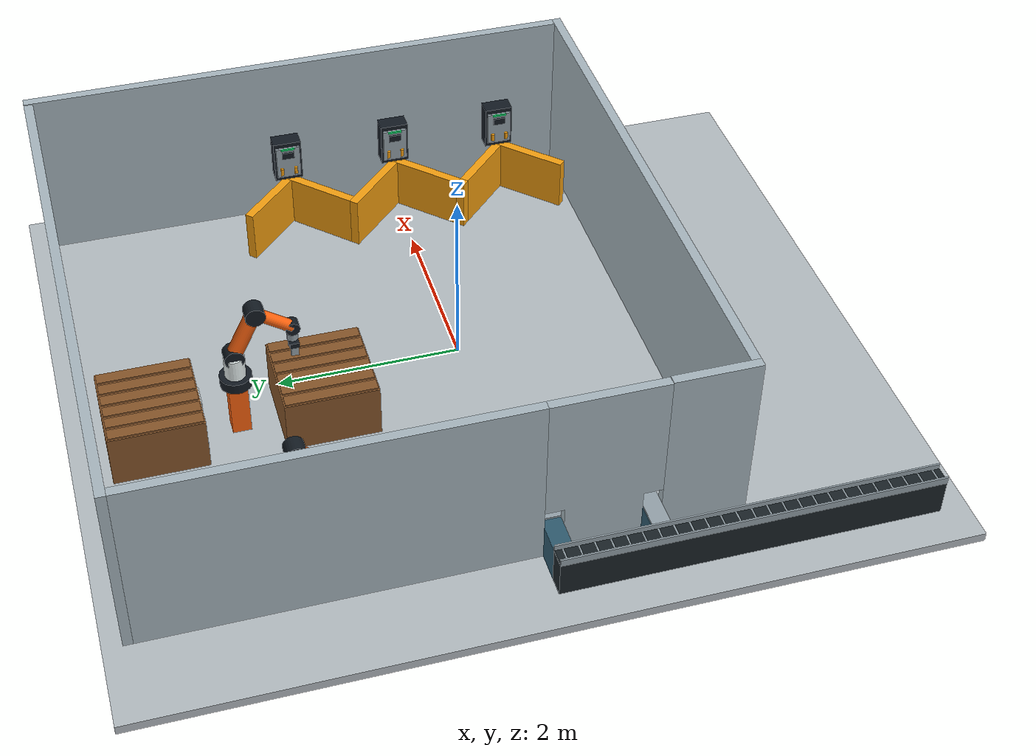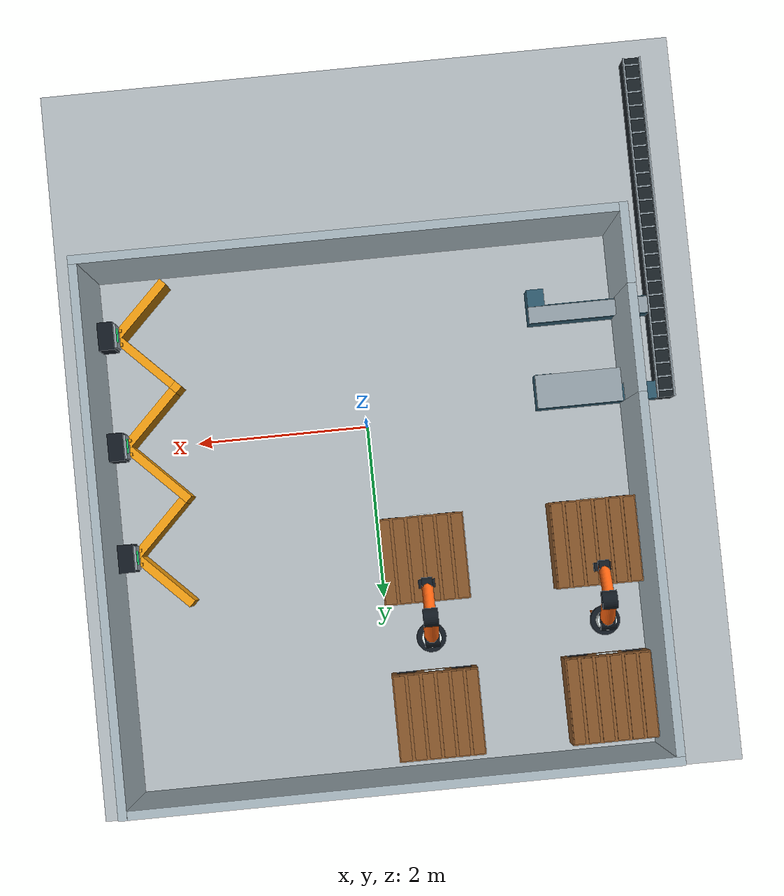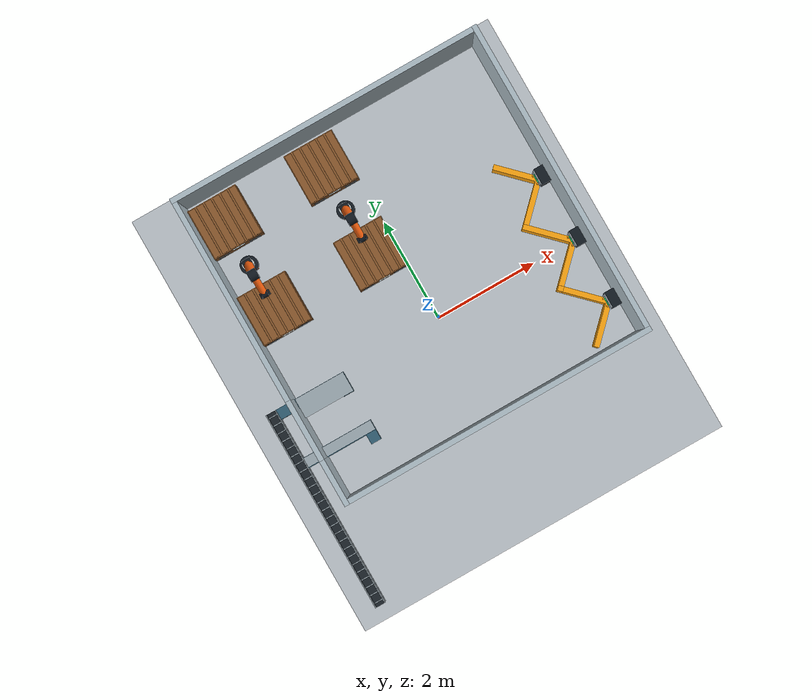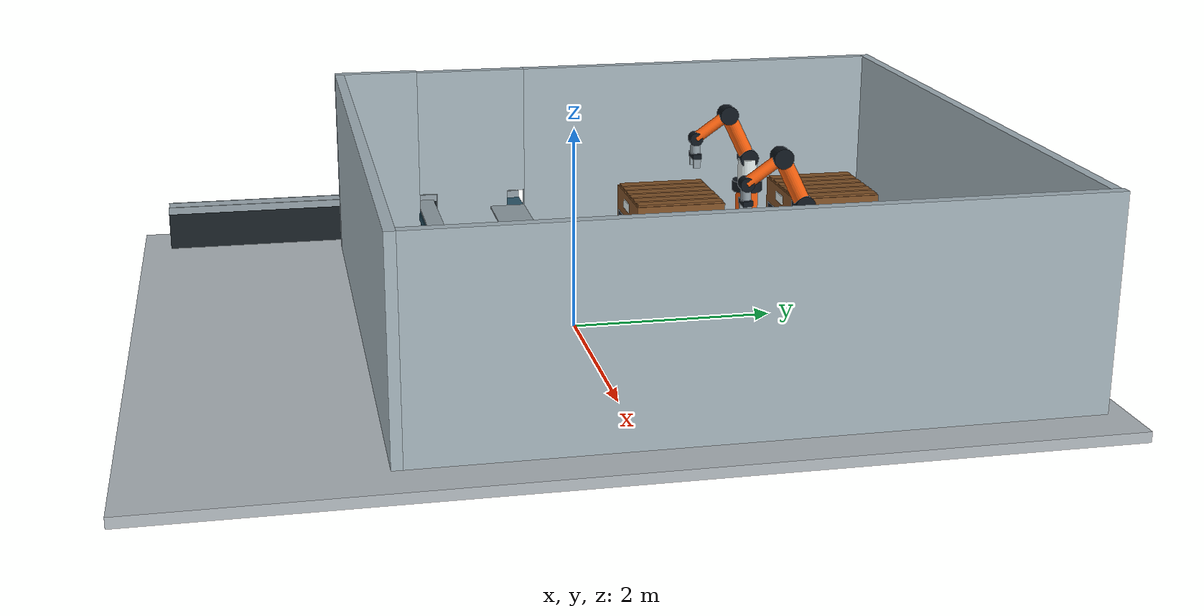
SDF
<?xml version='1.0' encoding='utf-8'?>
<sdf version="1.9">
  <world name="amr_workcell">
    <plugin filename="gz-sim-physics-system" name="gz::sim::systems::Physics" />
    <plugin filename="gz-sim-user-commands-system" name="gz::sim::systems::UserCommands" />
    <plugin filename="gz-sim-scene-broadcaster-system" name="gz::sim::systems::SceneBroadcaster" />
    <plugin filename="gz-sim-sensors-system" name="gz::sim::systems::Sensors">
      <render_engine>ogre2</render_engine>
    </plugin>
    <plugin filename="gz-sim-imu-system" name="gz::sim::systems::Imu" />
    <physics type="ode">
      <real_time_update_rate>1000.0</real_time_update_rate>
      <max_step_size>0.001</max_step_size>
      <real_time_factor>1</real_time_factor>
      <ode>
        <solver>
          <type>quick</type>
          <iters>150</iters>
          <precon_iters>0</precon_iters>
          <sor>1.400000</sor>
          <use_dynamic_moi_rescaling>1</use_dynamic_moi_rescaling>
        </solver>
        <constraints>
          <cfm>0.00001</cfm>
          <erp>0.8</erp>
          <contact_max_correcting_vel>100.0</contact_max_correcting_vel>
          <contact_surface_layer>0.001</contact_surface_layer>
        </constraints>
      </ode>
    </physics>
    <gravity>0 0 -9.8</gravity>
    <scene>
      <ambient>.7 .7 .7 1</ambient>
      <background>.16 .20 .24 1</background>
      <shadows>true</shadows>
    </scene>
    <light name="warehouse_light" type="directional">
      <pose>0 0 8 0 0 0</pose>
      <direction>-.3 .5 -1</direction>
      <diffuse>.9 .9 .9 1</diffuse>
      <cast_shadows>true</cast_shadows>
    </light>
    <model name="original_layout">
      <static>true</static>
      <link name="map">
        <!-- 복합 STL 대신 가벼운 직육면체(Box) 충돌체 배치 -->
        <!-- 외벽 1 (상단 벽) -->
        <collision name="wall_top_collision">
          <pose>0 3.7 0.5 0 0 0</pose>
          <geometry>
            <box>
              <size>7.0 0.2 1.0</size>
            </box>
          </geometry>
        </collision>

        <!-- 외벽 2 (하단 벽) -->
        <collision name="wall_bottom_collision">
          <pose>0 -3.7 0.5 0 0 0</pose>
          <geometry>
            <box>
              <size>7.0 0.2 1.0</size>
            </box>
          </geometry>
        </collision>

        <!-- 외벽 3 (좌측 벽) -->
        <collision name="wall_left_collision">
          <pose>-3.5 0 0.5 0 0 0</pose>
          <geometry>
            <box>
              <size>0.2 7.4 1.0</size>
            </box>
          </geometry>
        </collision>

        <!-- 외벽 4 (우측 벽) -->
        <collision name="wall_right_collision">
          <pose>3.5 0 0.5 0 0 0</pose>
          <geometry>
            <box>
              <size>0.2 7.4 1.0</size>
            </box>
          </geometry>
        </collision>
        <visual name="wall_0">
          <geometry>
            <mesh>
              <uri>../models/my_workbench_map/meshes/part_00.stl</uri>
            </mesh>
          </geometry>
          <material>
            <ambient>.65 .71 .74 1</ambient>
            <diffuse>.65 .71 .74 1</diffuse>
          </material>
        </visual>
        <visual name="wall_1">
          <geometry>
            <mesh>
              <uri>../models/my_workbench_map/meshes/part_01.stl</uri>
            </mesh>
          </geometry>
          <material>
            <ambient>.65 .71 .74 1</ambient>
            <diffuse>.65 .71 .74 1</diffuse>
          </material>
        </visual>
        <visual name="wall_2">
          <geometry>
            <mesh>
              <uri>../models/my_workbench_map/meshes/part_02.stl</uri>
            </mesh>
          </geometry>
          <material>
            <ambient>.65 .71 .74 1</ambient>
            <diffuse>.65 .71 .74 1</diffuse>
          </material>
        </visual>
        <visual name="wall_3">
          <geometry>
            <mesh>
              <uri>../models/my_workbench_map/meshes/part_03.stl</uri>
            </mesh>
          </geometry>
          <material>
            <ambient>.65 .71 .74 1</ambient>
            <diffuse>.65 .71 .74 1</diffuse>
          </material>
        </visual>
        <visual name="wall_4">
          <geometry>
            <mesh>
              <uri>../models/my_workbench_map/meshes/part_04.stl</uri>
            </mesh>
          </geometry>
          <material>
            <ambient>.65 .71 .74 1</ambient>
            <diffuse>.65 .71 .74 1</diffuse>
          </material>
        </visual>
        <visual name="wall_5">
          <geometry>
            <mesh>
              <uri>../models/my_workbench_map/meshes/part_05.stl</uri>
            </mesh>
          </geometry>
          <material>
            <ambient>.65 .71 .74 1</ambient>
            <diffuse>.65 .71 .74 1</diffuse>
          </material>
        </visual>
        <visual name="dock_6">
          <geometry>
            <mesh>
              <uri>../models/my_workbench_map/meshes/part_06.stl</uri>
            </mesh>
          </geometry>
          <material>
            <ambient>.95 .62 .06 1</ambient>
            <diffuse>.95 .62 .06 1</diffuse>
          </material>
        </visual>
        <visual name="dock_7">
          <geometry>
            <mesh>
              <uri>../models/my_workbench_map/meshes/part_07.stl</uri>
            </mesh>
          </geometry>
          <material>
            <ambient>.95 .62 .06 1</ambient>
            <diffuse>.95 .62 .06 1</diffuse>
          </material>
        </visual>
        <visual name="dock_8">
          <geometry>
            <mesh>
              <uri>../models/my_workbench_map/meshes/part_08.stl</uri>
            </mesh>
          </geometry>
          <material>
            <ambient>.95 .62 .06 1</ambient>
            <diffuse>.95 .62 .06 1</diffuse>
          </material>
        </visual>
        <visual name="dock_9">
          <geometry>
            <mesh>
              <uri>../models/my_workbench_map/meshes/part_09.stl</uri>
            </mesh>
          </geometry>
          <material>
            <ambient>.95 .62 .06 1</ambient>
            <diffuse>.95 .62 .06 1</diffuse>
          </material>
        </visual>
        <visual name="dock_10">
          <geometry>
            <mesh>
              <uri>../models/my_workbench_map/meshes/part_10.stl</uri>
            </mesh>
          </geometry>
          <material>
            <ambient>.95 .62 .06 1</ambient>
            <diffuse>.95 .62 .06 1</diffuse>
          </material>
        </visual>
        <visual name="dock_11">
          <geometry>
            <mesh>
              <uri>../models/my_workbench_map/meshes/part_11.stl</uri>
            </mesh>
          </geometry>
          <material>
            <ambient>.95 .62 .06 1</ambient>
            <diffuse>.95 .62 .06 1</diffuse>
          </material>
        </visual>
        <visual name="belt_12">
          <geometry>
            <mesh>
              <uri>../models/my_workbench_map/meshes/part_12.stl</uri>
            </mesh>
          </geometry>
          <material>
            <ambient>.10 .13 .15 1</ambient>
            <diffuse>.10 .13 .15 1</diffuse>
          </material>
        </visual>
        <visual name="bench_13">
          <geometry>
            <mesh>
              <uri>../models/my_workbench_map/meshes/part_13.stl</uri>
            </mesh>
          </geometry>
          <material>
            <ambient>.18 .35 .43 1</ambient>
            <diffuse>.18 .35 .43 1</diffuse>
          </material>
        </visual>
        <visual name="bench_14">
          <geometry>
            <mesh>
              <uri>../models/my_workbench_map/meshes/part_14.stl</uri>
            </mesh>
          </geometry>
          <material>
            <ambient>.18 .35 .43 1</ambient>
            <diffuse>.18 .35 .43 1</diffuse>
          </material>
        </visual>
        <visual name="arm_15">
          <geometry>
            <mesh>
              <uri>../models/my_workbench_map/meshes/part_15.stl</uri>
            </mesh>
          </geometry>
          <material>
            <ambient>.97 .38 .055 1</ambient>
            <diffuse>.97 .38 .055 1</diffuse>
          </material>
        </visual>
        <visual name="arm_16">
          <geometry>
            <mesh>
              <uri>../models/my_workbench_map/meshes/part_16.stl</uri>
            </mesh>
          </geometry>
          <material>
            <ambient>.97 .38 .055 1</ambient>
            <diffuse>.97 .38 .055 1</diffuse>
          </material>
        </visual>
        <visual name="pallet_17">
          <geometry>
            <mesh>
              <uri>../models/my_workbench_map/meshes/part_17.stl</uri>
            </mesh>
          </geometry>
          <material>
            <ambient>.52 .33 .16 1</ambient>
            <diffuse>.52 .33 .16 1</diffuse>
          </material>
        </visual>
        <visual name="pallet_18">
          <geometry>
            <mesh>
              <uri>../models/my_workbench_map/meshes/part_18.stl</uri>
            </mesh>
          </geometry>
          <material>
            <ambient>.52 .33 .16 1</ambient>
            <diffuse>.52 .33 .16 1</diffuse>
          </material>
        </visual>
        <visual name="pallet_19">
          <geometry>
            <mesh>
              <uri>../models/my_workbench_map/meshes/part_19.stl</uri>
            </mesh>
          </geometry>
          <material>
            <ambient>.52 .33 .16 1</ambient>
            <diffuse>.52 .33 .16 1</diffuse>
          </material>
        </visual>
        <visual name="pallet_20">
          <geometry>
            <mesh>
              <uri>../models/my_workbench_map/meshes/part_20.stl</uri>
            </mesh>
          </geometry>
          <material>
            <ambient>.52 .33 .16 1</ambient>
            <diffuse>.52 .33 .16 1</diffuse>
          </material>
        </visual>
        <visual name="bench_21">
          <geometry>
            <mesh>
              <uri>../models/my_workbench_map/meshes/part_21.stl</uri>
            </mesh>
          </geometry>
          <material>
            <ambient>.18 .35 .43 1</ambient>
            <diffuse>.18 .35 .43 1</diffuse>
          </material>
        </visual>
        <visual name="bench_22">
          <geometry>
            <mesh>
              <uri>../models/my_workbench_map/meshes/part_22.stl</uri>
            </mesh>
          </geometry>
          <material>
            <ambient>.18 .35 .43 1</ambient>
            <diffuse>.18 .35 .43 1</diffuse>
          </material>
        </visual>
        <!-- 공장 에폭시 바닥 비주얼 -->
        <!-- foundation_visual과 foundation_collision의 Z 높이를 조정 -->
        <visual name="foundation_visual">
          <pose>-0.25 0 -0.05 0 0 0</pose>
          <geometry>
            <box>
              <size>7.5 8.6 0.1</size>
            </box>
          </geometry>
          <material>
            <ambient>0.60 0.63 0.65 1.0</ambient>
            <diffuse>0.70 0.73 0.75 1.0</diffuse>
            <specular>0.4 0.4 0.4 1.0</specular>
          </material>
        </visual>

        <collision name="foundation_collision">
          <pose>-0.25 0 0 0 0 0</pose>
          <geometry>
            <plane>
              <normal>0 0 1</normal>
              <size>7.5 8.6</size>
            </plane>
          </geometry>
          <surface>
            <friction>
              <ode>
                <mu>100</mu>
                <mu2>50</mu2>
              </ode>
            </friction>
          </surface>
        </collision>
        <visual name="pallet_17_slat_0_visual">
          <pose>-2.92 3.4000000953674316 0.61 0 0 0</pose>
          <geometry>
            <box>
              <size>0.13 0.97 0.02</size>
            </box>
          </geometry>
          <material>
            <ambient>.52 .33 .16 1</ambient>
            <diffuse>.52 .33 .16 1</diffuse>
          </material>
        </visual>
        <visual name="pallet_17_slat_1_visual">
          <pose>-2.752 3.4000000953674316 0.61 0 0 0</pose>
          <geometry>
            <box>
              <size>0.13 0.97 0.02</size>
            </box>
          </geometry>
          <material>
            <ambient>.52 .33 .16 1</ambient>
            <diffuse>.52 .33 .16 1</diffuse>
          </material>
        </visual>
        <visual name="pallet_17_slat_2_visual">
          <pose>-2.584 3.4000000953674316 0.61 0 0 0</pose>
          <geometry>
            <box>
              <size>0.13 0.97 0.02</size>
            </box>
          </geometry>
          <material>
            <ambient>.52 .33 .16 1</ambient>
            <diffuse>.52 .33 .16 1</diffuse>
          </material>
        </visual>
        <visual name="pallet_17_slat_3_visual">
          <pose>-2.416 3.4000000953674316 0.61 0 0 0</pose>
          <geometry>
            <box>
              <size>0.13 0.97 0.02</size>
            </box>
          </geometry>
          <material>
            <ambient>.52 .33 .16 1</ambient>
            <diffuse>.52 .33 .16 1</diffuse>
          </material>
        </visual>
        <visual name="pallet_17_slat_4_visual">
          <pose>-2.2479999999999998 3.4000000953674316 0.61 0 0 0</pose>
          <geometry>
            <box>
              <size>0.13 0.97 0.02</size>
            </box>
          </geometry>
          <material>
            <ambient>.52 .33 .16 1</ambient>
            <diffuse>.52 .33 .16 1</diffuse>
          </material>
        </visual>
        <visual name="pallet_17_slat_5_visual">
          <pose>-2.08 3.4000000953674316 0.61 0 0 0</pose>
          <geometry>
            <box>
              <size>0.13 0.97 0.02</size>
            </box>
          </geometry>
          <material>
            <ambient>.52 .33 .16 1</ambient>
            <diffuse>.52 .33 .16 1</diffuse>
          </material>
        </visual>
        <visual name="pallet_17_fork_-0.32_visual">
          <pose>-2.82 2.8970000953674315 0.22 0 0 0</pose>
          <geometry>
            <box>
              <size>0.23 0.008 0.2</size>
            </box>
          </geometry>
          <material>
            <ambient>.07 .10 .13 1</ambient>
            <diffuse>.07 .10 .13 1</diffuse>
          </material>
        </visual>
        <visual name="pallet_17_fork_0.32_visual">
          <pose>-2.18 2.8970000953674315 0.22 0 0 0</pose>
          <geometry>
            <box>
              <size>0.23 0.008 0.2</size>
            </box>
          </geometry>
          <material>
            <ambient>.07 .10 .13 1</ambient>
            <diffuse>.07 .10 .13 1</diffuse>
          </material>
        </visual>
        <visual name="pallet_17_label_visual">
          <pose>-2.5 2.890000095367432 0.48 0 0 0</pose>
          <geometry>
            <box>
              <size>0.24 0.012 0.1</size>
            </box>
          </geometry>
          <material>
            <ambient>.90 .94 .94 1</ambient>
            <diffuse>.90 .94 .94 1</diffuse>
          </material>
        </visual>
        <visual name="pallet_18_slat_0_visual">
          <pose>-0.9199999999999999 3.4000000953674316 0.61 0 0 0</pose>
          <geometry>
            <box>
              <size>0.13 0.97 0.02</size>
            </box>
          </geometry>
          <material>
            <ambient>.52 .33 .16 1</ambient>
            <diffuse>.52 .33 .16 1</diffuse>
          </material>
        </visual>
        <visual name="pallet_18_slat_1_visual">
          <pose>-0.7519999999999999 3.4000000953674316 0.61 0 0 0</pose>
          <geometry>
            <box>
              <size>0.13 0.97 0.02</size>
            </box>
          </geometry>
          <material>
            <ambient>.52 .33 .16 1</ambient>
            <diffuse>.52 .33 .16 1</diffuse>
          </material>
        </visual>
        <visual name="pallet_18_slat_2_visual">
          <pose>-0.5839999999999999 3.4000000953674316 0.61 0 0 0</pose>
          <geometry>
            <box>
              <size>0.13 0.97 0.02</size>
            </box>
          </geometry>
          <material>
            <ambient>.52 .33 .16 1</ambient>
            <diffuse>.52 .33 .16 1</diffuse>
          </material>
        </visual>
        <visual name="pallet_18_slat_3_visual">
          <pose>-0.4159999999999999 3.4000000953674316 0.61 0 0 0</pose>
          <geometry>
            <box>
              <size>0.13 0.97 0.02</size>
            </box>
          </geometry>
          <material>
            <ambient>.52 .33 .16 1</ambient>
            <diffuse>.52 .33 .16 1</diffuse>
          </material>
        </visual>
        <visual name="pallet_18_slat_4_visual">
          <pose>-0.2479999999999999 3.4000000953674316 0.61 0 0 0</pose>
          <geometry>
            <box>
              <size>0.13 0.97 0.02</size>
            </box>
          </geometry>
          <material>
            <ambient>.52 .33 .16 1</ambient>
            <diffuse>.52 .33 .16 1</diffuse>
          </material>
        </visual>
        <visual name="pallet_18_slat_5_visual">
          <pose>-0.07999999999999985 3.4000000953674316 0.61 0 0 0</pose>
          <geometry>
            <box>
              <size>0.13 0.97 0.02</size>
            </box>
          </geometry>
          <material>
            <ambient>.52 .33 .16 1</ambient>
            <diffuse>.52 .33 .16 1</diffuse>
          </material>
        </visual>
        <visual name="pallet_18_fork_-0.32_visual">
          <pose>-0.8200000000000001 2.8970000953674315 0.22 0 0 0</pose>
          <geometry>
            <box>
              <size>0.23 0.008 0.2</size>
            </box>
          </geometry>
          <material>
            <ambient>.07 .10 .13 1</ambient>
            <diffuse>.07 .10 .13 1</diffuse>
          </material>
        </visual>
        <visual name="pallet_18_fork_0.32_visual">
          <pose>-0.18 2.8970000953674315 0.22 0 0 0</pose>
          <geometry>
            <box>
              <size>0.23 0.008 0.2</size>
            </box>
          </geometry>
          <material>
            <ambient>.07 .10 .13 1</ambient>
            <diffuse>.07 .10 .13 1</diffuse>
          </material>
        </visual>
        <visual name="pallet_18_label_visual">
          <pose>-0.5 2.890000095367432 0.48 0 0 0</pose>
          <geometry>
            <box>
              <size>0.24 0.012 0.1</size>
            </box>
          </geometry>
          <material>
            <ambient>.90 .94 .94 1</ambient>
            <diffuse>.90 .94 .94 1</diffuse>
          </material>
        </visual>
        <visual name="pallet_19_slat_0_visual">
          <pose>-0.9199999999999999 1.5999999642372131 0.61 0 0 0</pose>
          <geometry>
            <box>
              <size>0.13 0.97 0.02</size>
            </box>
          </geometry>
          <material>
            <ambient>.52 .33 .16 1</ambient>
            <diffuse>.52 .33 .16 1</diffuse>
          </material>
        </visual>
        <visual name="pallet_19_slat_1_visual">
          <pose>-0.7519999999999999 1.5999999642372131 0.61 0 0 0</pose>
          <geometry>
            <box>
              <size>0.13 0.97 0.02</size>
            </box>
          </geometry>
          <material>
            <ambient>.52 .33 .16 1</ambient>
            <diffuse>.52 .33 .16 1</diffuse>
          </material>
        </visual>
        <visual name="pallet_19_slat_2_visual">
          <pose>-0.5839999999999999 1.5999999642372131 0.61 0 0 0</pose>
          <geometry>
            <box>
              <size>0.13 0.97 0.02</size>
            </box>
          </geometry>
          <material>
            <ambient>.52 .33 .16 1</ambient>
            <diffuse>.52 .33 .16 1</diffuse>
          </material>
        </visual>
        <visual name="pallet_19_slat_3_visual">
          <pose>-0.4159999999999999 1.5999999642372131 0.61 0 0 0</pose>
          <geometry>
            <box>
              <size>0.13 0.97 0.02</size>
            </box>
          </geometry>
          <material>
            <ambient>.52 .33 .16 1</ambient>
            <diffuse>.52 .33 .16 1</diffuse>
          </material>
        </visual>
        <visual name="pallet_19_slat_4_visual">
          <pose>-0.2479999999999999 1.5999999642372131 0.61 0 0 0</pose>
          <geometry>
            <box>
              <size>0.13 0.97 0.02</size>
            </box>
          </geometry>
          <material>
            <ambient>.52 .33 .16 1</ambient>
            <diffuse>.52 .33 .16 1</diffuse>
          </material>
        </visual>
        <visual name="pallet_19_slat_5_visual">
          <pose>-0.07999999999999985 1.5999999642372131 0.61 0 0 0</pose>
          <geometry>
            <box>
              <size>0.13 0.97 0.02</size>
            </box>
          </geometry>
          <material>
            <ambient>.52 .33 .16 1</ambient>
            <diffuse>.52 .33 .16 1</diffuse>
          </material>
        </visual>
        <visual name="pallet_19_fork_-0.32_visual">
          <pose>-0.8200000000000001 1.096999964237213 0.22 0 0 0</pose>
          <geometry>
            <box>
              <size>0.23 0.008 0.2</size>
            </box>
          </geometry>
          <material>
            <ambient>.07 .10 .13 1</ambient>
            <diffuse>.07 .10 .13 1</diffuse>
          </material>
        </visual>
        <visual name="pallet_19_fork_0.32_visual">
          <pose>-0.18 1.096999964237213 0.22 0 0 0</pose>
          <geometry>
            <box>
              <size>0.23 0.008 0.2</size>
            </box>
          </geometry>
          <material>
            <ambient>.07 .10 .13 1</ambient>
            <diffuse>.07 .10 .13 1</diffuse>
          </material>
        </visual>
        <visual name="pallet_19_label_visual">
          <pose>-0.5 1.0899999642372131 0.48 0 0 0</pose>
          <geometry>
            <box>
              <size>0.24 0.012 0.1</size>
            </box>
          </geometry>
          <material>
            <ambient>.90 .94 .94 1</ambient>
            <diffuse>.90 .94 .94 1</diffuse>
          </material>
        </visual>
        <visual name="pallet_20_slat_0_visual">
          <pose>-2.92 1.5999999642372131 0.61 0 0 0</pose>
          <geometry>
            <box>
              <size>0.13 0.97 0.02</size>
            </box>
          </geometry>
          <material>
            <ambient>.52 .33 .16 1</ambient>
            <diffuse>.52 .33 .16 1</diffuse>
          </material>
        </visual>
        <visual name="pallet_20_slat_1_visual">
          <pose>-2.752 1.5999999642372131 0.61 0 0 0</pose>
          <geometry>
            <box>
              <size>0.13 0.97 0.02</size>
            </box>
          </geometry>
          <material>
            <ambient>.52 .33 .16 1</ambient>
            <diffuse>.52 .33 .16 1</diffuse>
          </material>
        </visual>
        <visual name="pallet_20_slat_2_visual">
          <pose>-2.584 1.5999999642372131 0.61 0 0 0</pose>
          <geometry>
            <box>
              <size>0.13 0.97 0.02</size>
            </box>
          </geometry>
          <material>
            <ambient>.52 .33 .16 1</ambient>
            <diffuse>.52 .33 .16 1</diffuse>
          </material>
        </visual>
        <visual name="pallet_20_slat_3_visual">
          <pose>-2.416 1.5999999642372131 0.61 0 0 0</pose>
          <geometry>
            <box>
              <size>0.13 0.97 0.02</size>
            </box>
          </geometry>
          <material>
            <ambient>.52 .33 .16 1</ambient>
            <diffuse>.52 .33 .16 1</diffuse>
          </material>
        </visual>
        <visual name="pallet_20_slat_4_visual">
          <pose>-2.2479999999999998 1.5999999642372131 0.61 0 0 0</pose>
          <geometry>
            <box>
              <size>0.13 0.97 0.02</size>
            </box>
          </geometry>
          <material>
            <ambient>.52 .33 .16 1</ambient>
            <diffuse>.52 .33 .16 1</diffuse>
          </material>
        </visual>
        <visual name="pallet_20_slat_5_visual">
          <pose>-2.08 1.5999999642372131 0.61 0 0 0</pose>
          <geometry>
            <box>
              <size>0.13 0.97 0.02</size>
            </box>
          </geometry>
          <material>
            <ambient>.52 .33 .16 1</ambient>
            <diffuse>.52 .33 .16 1</diffuse>
          </material>
        </visual>
        <visual name="pallet_20_fork_-0.32_visual">
          <pose>-2.82 1.096999964237213 0.22 0 0 0</pose>
          <geometry>
            <box>
              <size>0.23 0.008 0.2</size>
            </box>
          </geometry>
          <material>
            <ambient>.07 .10 .13 1</ambient>
            <diffuse>.07 .10 .13 1</diffuse>
          </material>
        </visual>
        <visual name="pallet_20_fork_0.32_visual">
          <pose>-2.18 1.096999964237213 0.22 0 0 0</pose>
          <geometry>
            <box>
              <size>0.23 0.008 0.2</size>
            </box>
          </geometry>
          <material>
            <ambient>.07 .10 .13 1</ambient>
            <diffuse>.07 .10 .13 1</diffuse>
          </material>
        </visual>
        <visual name="pallet_20_label_visual">
          <pose>-2.5 1.0899999642372131 0.48 0 0 0</pose>
          <geometry>
            <box>
              <size>0.24 0.012 0.1</size>
            </box>
          </geometry>
          <material>
            <ambient>.90 .94 .94 1</ambient>
            <diffuse>.90 .94 .94 1</diffuse>
          </material>
        </visual>
        <visual name="arm_0_turntable_visual">
          <pose>-2.5 2.5 0.66 0 0 0</pose>
          <geometry>
            <cylinder>
              <radius>0.17</radius>
              <length>0.12</length>
            </cylinder>
          </geometry>
          <material>
            <ambient>.07 .10 .13 1</ambient>
            <diffuse>.07 .10 .13 1</diffuse>
          </material>
        </visual>
        <collision name="arm_0_turntable_collision">
          <pose>-2.5 2.5 0.66 0 0 0</pose>
          <geometry>
            <cylinder>
              <radius>0.17</radius>
              <length>0.12</length>
            </cylinder>
          </geometry>
        </collision>
        <visual name="arm_0_pedestal_visual">
          <pose>-2.5 2.5 0.84 0 0 0</pose>
          <geometry>
            <cylinder>
              <radius>0.11</radius>
              <length>0.26</length>
            </cylinder>
          </geometry>
          <material>
            <ambient>.90 .94 .94 1</ambient>
            <diffuse>.90 .94 .94 1</diffuse>
          </material>
        </visual>
        <collision name="arm_0_pedestal_collision">
          <pose>-2.5 2.5 0.84 0 0 0</pose>
          <geometry>
            <cylinder>
              <radius>0.11</radius>
              <length>0.26</length>
            </cylinder>
          </geometry>
        </collision>
        <visual name="arm_0_upper_visual">
          <pose>-2.5 2.375 1.2349999999999999 0 0.45577375597670555 -1.5707963267948966</pose>
          <geometry>
            <cylinder>
              <radius>0.085</radius>
              <length>0.567978872846517</length>
            </cylinder>
          </geometry>
          <material>
            <ambient>.97 .38 .055 1</ambient>
            <diffuse>.97 .38 .055 1</diffuse>
          </material>
        </visual>
        <collision name="arm_0_upper_collision">
          <pose>-2.5 2.375 1.2349999999999999 0 0.45577375597670555 -1.5707963267948966</pose>
          <geometry>
            <cylinder>
              <radius>0.085</radius>
              <length>0.567978872846517</length>
            </cylinder>
          </geometry>
        </collision>
        <visual name="arm_0_forearm_visual">
          <pose>-2.5 2.065 1.3599999999999999 0 2.1833338834052 -1.5707963267948966</pose>
          <geometry>
            <cylinder>
              <radius>0.065</radius>
              <length>0.4522167621838006</length>
            </cylinder>
          </geometry>
          <material>
            <ambient>.97 .38 .055 1</ambient>
            <diffuse>.97 .38 .055 1</diffuse>
          </material>
        </visual>
        <collision name="arm_0_forearm_collision">
          <pose>-2.5 2.065 1.3599999999999999 0 2.1833338834052 -1.5707963267948966</pose>
          <geometry>
            <cylinder>
              <radius>0.065</radius>
              <length>0.4522167621838006</length>
            </cylinder>
          </geometry>
        </collision>
        <visual name="arm_0_joint_0_visual">
          <pose>-2.5 2.5 0.98 0 1.5707963267948966 0</pose>
          <geometry>
            <cylinder>
              <radius>0.105</radius>
              <length>0.17</length>
            </cylinder>
          </geometry>
          <material>
            <ambient>.07 .10 .13 1</ambient>
            <diffuse>.07 .10 .13 1</diffuse>
          </material>
        </visual>
        <collision name="arm_0_joint_0_collision">
          <pose>-2.5 2.5 0.98 0 1.5707963267948966 0</pose>
          <geometry>
            <cylinder>
              <radius>0.105</radius>
              <length>0.17</length>
            </cylinder>
          </geometry>
        </collision>
        <visual name="arm_0_joint_1_visual">
          <pose>-2.5 2.25 1.49 0 1.5707963267948966 0</pose>
          <geometry>
            <cylinder>
              <radius>0.105</radius>
              <length>0.17</length>
            </cylinder>
          </geometry>
          <material>
            <ambient>.07 .10 .13 1</ambient>
            <diffuse>.07 .10 .13 1</diffuse>
          </material>
        </visual>
        <collision name="arm_0_joint_1_collision">
          <pose>-2.5 2.25 1.49 0 1.5707963267948966 0</pose>
          <geometry>
            <cylinder>
              <radius>0.105</radius>
              <length>0.17</length>
            </cylinder>
          </geometry>
        </collision>
        <visual name="arm_0_joint_2_visual">
          <pose>-2.5 1.88 1.23 0 1.5707963267948966 0</pose>
          <geometry>
            <cylinder>
              <radius>0.075</radius>
              <length>0.12</length>
            </cylinder>
          </geometry>
          <material>
            <ambient>.07 .10 .13 1</ambient>
            <diffuse>.07 .10 .13 1</diffuse>
          </material>
        </visual>
        <collision name="arm_0_joint_2_collision">
          <pose>-2.5 1.88 1.23 0 1.5707963267948966 0</pose>
          <geometry>
            <cylinder>
              <radius>0.075</radius>
              <length>0.12</length>
            </cylinder>
          </geometry>
        </collision>
        <visual name="arm_0_wrist_visual">
          <pose>-2.5 1.88 1.13 0 0 0</pose>
          <geometry>
            <cylinder>
              <radius>0.055</radius>
              <length>0.14</length>
            </cylinder>
          </geometry>
          <material>
            <ambient>.58 .63 .66 1</ambient>
            <diffuse>.58 .63 .66 1</diffuse>
          </material>
        </visual>
        <collision name="arm_0_wrist_collision">
          <pose>-2.5 1.88 1.13 0 0 0</pose>
          <geometry>
            <cylinder>
              <radius>0.055</radius>
              <length>0.14</length>
            </cylinder>
          </geometry>
        </collision>
        <visual name="arm_0_gripper_visual">
          <pose>-2.5 1.88 1.04 0 0 0</pose>
          <geometry>
            <box>
              <size>0.19 0.1 0.06</size>
            </box>
          </geometry>
          <material>
            <ambient>.07 .10 .13 1</ambient>
            <diffuse>.07 .10 .13 1</diffuse>
          </material>
        </visual>
        <collision name="arm_0_gripper_collision">
          <pose>-2.5 1.88 1.04 0 0 0</pose>
          <geometry>
            <box>
              <size>0.19 0.1 0.06</size>
            </box>
          </geometry>
        </collision>
        <visual name="arm_0_finger_-0.078_visual">
          <pose>-2.578 1.88 0.97 0 0 0</pose>
          <geometry>
            <box>
              <size>0.025 0.08 0.12</size>
            </box>
          </geometry>
          <material>
            <ambient>.58 .63 .66 1</ambient>
            <diffuse>.58 .63 .66 1</diffuse>
          </material>
        </visual>
        <collision name="arm_0_finger_-0.078_collision">
          <pose>-2.578 1.88 0.97 0 0 0</pose>
          <geometry>
            <box>
              <size>0.025 0.08 0.12</size>
            </box>
          </geometry>
        </collision>
        <visual name="arm_0_finger_0.078_visual">
          <pose>-2.422 1.88 0.97 0 0 0</pose>
          <geometry>
            <box>
              <size>0.025 0.08 0.12</size>
            </box>
          </geometry>
          <material>
            <ambient>.58 .63 .66 1</ambient>
            <diffuse>.58 .63 .66 1</diffuse>
          </material>
        </visual>
        <collision name="arm_0_finger_0.078_collision">
          <pose>-2.422 1.88 0.97 0 0 0</pose>
          <geometry>
            <box>
              <size>0.025 0.08 0.12</size>
            </box>
          </geometry>
        </collision>
        <visual name="arm_1_turntable_visual">
          <pose>-0.5 2.5 0.66 0 0 0</pose>
          <geometry>
            <cylinder>
              <radius>0.17</radius>
              <length>0.12</length>
            </cylinder>
          </geometry>
          <material>
            <ambient>.07 .10 .13 1</ambient>
            <diffuse>.07 .10 .13 1</diffuse>
          </material>
        </visual>
        <collision name="arm_1_turntable_collision">
          <pose>-0.5 2.5 0.66 0 0 0</pose>
          <geometry>
            <cylinder>
              <radius>0.17</radius>
              <length>0.12</length>
            </cylinder>
          </geometry>
        </collision>
        <visual name="arm_1_pedestal_visual">
          <pose>-0.5 2.5 0.84 0 0 0</pose>
          <geometry>
            <cylinder>
              <radius>0.11</radius>
              <length>0.26</length>
            </cylinder>
          </geometry>
          <material>
            <ambient>.90 .94 .94 1</ambient>
            <diffuse>.90 .94 .94 1</diffuse>
          </material>
        </visual>
        <collision name="arm_1_pedestal_collision">
          <pose>-0.5 2.5 0.84 0 0 0</pose>
          <geometry>
            <cylinder>
              <radius>0.11</radius>
              <length>0.26</length>
            </cylinder>
          </geometry>
        </collision>
        <visual name="arm_1_upper_visual">
          <pose>-0.5 2.375 1.2349999999999999 0 0.45577375597670555 -1.5707963267948966</pose>
          <geometry>
            <cylinder>
              <radius>0.085</radius>
              <length>0.567978872846517</length>
            </cylinder>
          </geometry>
          <material>
            <ambient>.97 .38 .055 1</ambient>
            <diffuse>.97 .38 .055 1</diffuse>
          </material>
        </visual>
        <collision name="arm_1_upper_collision">
          <pose>-0.5 2.375 1.2349999999999999 0 0.45577375597670555 -1.5707963267948966</pose>
          <geometry>
            <cylinder>
              <radius>0.085</radius>
              <length>0.567978872846517</length>
            </cylinder>
          </geometry>
        </collision>
        <visual name="arm_1_forearm_visual">
          <pose>-0.5 2.065 1.3599999999999999 0 2.1833338834052 -1.5707963267948966</pose>
          <geometry>
            <cylinder>
              <radius>0.065</radius>
              <length>0.4522167621838006</length>
            </cylinder>
          </geometry>
          <material>
            <ambient>.97 .38 .055 1</ambient>
            <diffuse>.97 .38 .055 1</diffuse>
          </material>
        </visual>
        <collision name="arm_1_forearm_collision">
          <pose>-0.5 2.065 1.3599999999999999 0 2.1833338834052 -1.5707963267948966</pose>
          <geometry>
            <cylinder>
              <radius>0.065</radius>
              <length>0.4522167621838006</length>
            </cylinder>
          </geometry>
        </collision>
        <visual name="arm_1_joint_0_visual">
          <pose>-0.5 2.5 0.98 0 1.5707963267948966 0</pose>
          <geometry>
            <cylinder>
              <radius>0.105</radius>
              <length>0.17</length>
            </cylinder>
          </geometry>
          <material>
            <ambient>.07 .10 .13 1</ambient>
            <diffuse>.07 .10 .13 1</diffuse>
          </material>
        </visual>
        <collision name="arm_1_joint_0_collision">
          <pose>-0.5 2.5 0.98 0 1.5707963267948966 0</pose>
          <geometry>
            <cylinder>
              <radius>0.105</radius>
              <length>0.17</length>
            </cylinder>
          </geometry>
        </collision>
        <visual name="arm_1_joint_1_visual">
          <pose>-0.5 2.25 1.49 0 1.5707963267948966 0</pose>
          <geometry>
            <cylinder>
              <radius>0.105</radius>
              <length>0.17</length>
            </cylinder>
          </geometry>
          <material>
            <ambient>.07 .10 .13 1</ambient>
            <diffuse>.07 .10 .13 1</diffuse>
          </material>
        </visual>
        <collision name="arm_1_joint_1_collision">
          <pose>-0.5 2.25 1.49 0 1.5707963267948966 0</pose>
          <geometry>
            <cylinder>
              <radius>0.105</radius>
              <length>0.17</length>
            </cylinder>
          </geometry>
        </collision>
        <visual name="arm_1_joint_2_visual">
          <pose>-0.5 1.88 1.23 0 1.5707963267948966 0</pose>
          <geometry>
            <cylinder>
              <radius>0.075</radius>
              <length>0.12</length>
            </cylinder>
          </geometry>
          <material>
            <ambient>.07 .10 .13 1</ambient>
            <diffuse>.07 .10 .13 1</diffuse>
          </material>
        </visual>
        <collision name="arm_1_joint_2_collision">
          <pose>-0.5 1.88 1.23 0 1.5707963267948966 0</pose>
          <geometry>
            <cylinder>
              <radius>0.075</radius>
              <length>0.12</length>
            </cylinder>
          </geometry>
        </collision>
        <visual name="arm_1_wrist_visual">
          <pose>-0.5 1.88 1.13 0 0 0</pose>
          <geometry>
            <cylinder>
              <radius>0.055</radius>
              <length>0.14</length>
            </cylinder>
          </geometry>
          <material>
            <ambient>.58 .63 .66 1</ambient>
            <diffuse>.58 .63 .66 1</diffuse>
          </material>
        </visual>
        <collision name="arm_1_wrist_collision">
          <pose>-0.5 1.88 1.13 0 0 0</pose>
          <geometry>
            <cylinder>
              <radius>0.055</radius>
              <length>0.14</length>
            </cylinder>
          </geometry>
        </collision>
        <visual name="arm_1_gripper_visual">
          <pose>-0.5 1.88 1.04 0 0 0</pose>
          <geometry>
            <box>
              <size>0.19 0.1 0.06</size>
            </box>
          </geometry>
          <material>
            <ambient>.07 .10 .13 1</ambient>
            <diffuse>.07 .10 .13 1</diffuse>
          </material>
        </visual>
        <collision name="arm_1_gripper_collision">
          <pose>-0.5 1.88 1.04 0 0 0</pose>
          <geometry>
            <box>
              <size>0.19 0.1 0.06</size>
            </box>
          </geometry>
        </collision>
        <visual name="arm_1_finger_-0.078_visual">
          <pose>-0.578 1.88 0.97 0 0 0</pose>
          <geometry>
            <box>
              <size>0.025 0.08 0.12</size>
            </box>
          </geometry>
          <material>
            <ambient>.58 .63 .66 1</ambient>
            <diffuse>.58 .63 .66 1</diffuse>
          </material>
        </visual>
        <collision name="arm_1_finger_-0.078_collision">
          <pose>-0.578 1.88 0.97 0 0 0</pose>
          <geometry>
            <box>
              <size>0.025 0.08 0.12</size>
            </box>
          </geometry>
        </collision>
        <visual name="arm_1_finger_0.078_visual">
          <pose>-0.422 1.88 0.97 0 0 0</pose>
          <geometry>
            <box>
              <size>0.025 0.08 0.12</size>
            </box>
          </geometry>
          <material>
            <ambient>.58 .63 .66 1</ambient>
            <diffuse>.58 .63 .66 1</diffuse>
          </material>
        </visual>
        <collision name="arm_1_finger_0.078_collision">
          <pose>-0.422 1.88 0.97 0 0 0</pose>
          <geometry>
            <box>
              <size>0.025 0.08 0.12</size>
            </box>
          </geometry>
        </collision>
        <visual name="worktop_-0.2_visual">
          <pose>-2.5 -0.2 0.411 0 0 0</pose>
          <geometry>
            <box>
              <size>1 0.39 0.022</size>
            </box>
          </geometry>
          <material>
            <ambient>.58 .63 .66 1</ambient>
            <diffuse>.58 .63 .66 1</diffuse>
          </material>
        </visual>
        <visual name="bench_trim_-0.2_visual">
          <pose>-2.5 -0.305 0.34 0 0 0</pose>
          <geometry>
            <box>
              <size>1 0.012 0.07</size>
            </box>
          </geometry>
          <material>
            <ambient>.18 .35 .43 1</ambient>
            <diffuse>.18 .35 .43 1</diffuse>
          </material>
        </visual>
        <visual name="worktop_-1.1_visual">
          <pose>-2.7 -1.1 0.411 0 0 0</pose>
          <geometry>
            <box>
              <size>1.4 0.19 0.022</size>
            </box>
          </geometry>
          <material>
            <ambient>.58 .63 .66 1</ambient>
            <diffuse>.58 .63 .66 1</diffuse>
          </material>
        </visual>
        <visual name="bench_trim_-1.1_visual">
          <pose>-2.7 -1.205 0.34 0 0 0</pose>
          <geometry>
            <box>
              <size>1.4 0.012 0.07</size>
            </box>
          </geometry>
          <material>
            <ambient>.18 .35 .43 1</ambient>
            <diffuse>.18 .35 .43 1</diffuse>
          </material>
        </visual>
        <visual name="conveyor_belt_visual">
          <pose>-3.5 -2 0.414 0 0 0</pose>
          <geometry>
            <box>
              <size>0.16 4 0.025</size>
            </box>
          </geometry>
          <material>
            <ambient>.10 .13 .15 1</ambient>
            <diffuse>.10 .13 .15 1</diffuse>
          </material>
        </visual>
        <visual name="conveyor_seam_0_visual">
          <pose>-3.5 -3.92 0.428 0 0 0</pose>
          <geometry>
            <box>
              <size>0.16 0.018 0.004</size>
            </box>
          </geometry>
          <material>
            <ambient>.58 .63 .66 1</ambient>
            <diffuse>.58 .63 .66 1</diffuse>
          </material>
        </visual>
        <visual name="conveyor_seam_1_visual">
          <pose>-3.5 -3.76 0.428 0 0 0</pose>
          <geometry>
            <box>
              <size>0.16 0.018 0.004</size>
            </box>
          </geometry>
          <material>
            <ambient>.58 .63 .66 1</ambient>
            <diffuse>.58 .63 .66 1</diffuse>
          </material>
        </visual>
        <visual name="conveyor_seam_2_visual">
          <pose>-3.5 -3.6 0.428 0 0 0</pose>
          <geometry>
            <box>
              <size>0.16 0.018 0.004</size>
            </box>
          </geometry>
          <material>
            <ambient>.58 .63 .66 1</ambient>
            <diffuse>.58 .63 .66 1</diffuse>
          </material>
        </visual>
        <visual name="conveyor_seam_3_visual">
          <pose>-3.5 -3.44 0.428 0 0 0</pose>
          <geometry>
            <box>
              <size>0.16 0.018 0.004</size>
            </box>
          </geometry>
          <material>
            <ambient>.58 .63 .66 1</ambient>
            <diffuse>.58 .63 .66 1</diffuse>
          </material>
        </visual>
        <visual name="conveyor_seam_4_visual">
          <pose>-3.5 -3.28 0.428 0 0 0</pose>
          <geometry>
            <box>
              <size>0.16 0.018 0.004</size>
            </box>
          </geometry>
          <material>
            <ambient>.58 .63 .66 1</ambient>
            <diffuse>.58 .63 .66 1</diffuse>
          </material>
        </visual>
        <visual name="conveyor_seam_5_visual">
          <pose>-3.5 -3.12 0.428 0 0 0</pose>
          <geometry>
            <box>
              <size>0.16 0.018 0.004</size>
            </box>
          </geometry>
          <material>
            <ambient>.58 .63 .66 1</ambient>
            <diffuse>.58 .63 .66 1</diffuse>
          </material>
        </visual>
        <visual name="conveyor_seam_6_visual">
          <pose>-3.5 -2.96 0.428 0 0 0</pose>
          <geometry>
            <box>
              <size>0.16 0.018 0.004</size>
            </box>
          </geometry>
          <material>
            <ambient>.58 .63 .66 1</ambient>
            <diffuse>.58 .63 .66 1</diffuse>
          </material>
        </visual>
        <visual name="conveyor_seam_7_visual">
          <pose>-3.5 -2.8 0.428 0 0 0</pose>
          <geometry>
            <box>
              <size>0.16 0.018 0.004</size>
            </box>
          </geometry>
          <material>
            <ambient>.58 .63 .66 1</ambient>
            <diffuse>.58 .63 .66 1</diffuse>
          </material>
        </visual>
        <visual name="conveyor_seam_8_visual">
          <pose>-3.5 -2.6399999999999997 0.428 0 0 0</pose>
          <geometry>
            <box>
              <size>0.16 0.018 0.004</size>
            </box>
          </geometry>
          <material>
            <ambient>.58 .63 .66 1</ambient>
            <diffuse>.58 .63 .66 1</diffuse>
          </material>
        </visual>
        <visual name="conveyor_seam_9_visual">
          <pose>-3.5 -2.48 0.428 0 0 0</pose>
          <geometry>
            <box>
              <size>0.16 0.018 0.004</size>
            </box>
          </geometry>
          <material>
            <ambient>.58 .63 .66 1</ambient>
            <diffuse>.58 .63 .66 1</diffuse>
          </material>
        </visual>
        <visual name="conveyor_seam_10_visual">
          <pose>-3.5 -2.32 0.428 0 0 0</pose>
          <geometry>
            <box>
              <size>0.16 0.018 0.004</size>
            </box>
          </geometry>
          <material>
            <ambient>.58 .63 .66 1</ambient>
            <diffuse>.58 .63 .66 1</diffuse>
          </material>
        </visual>
        <visual name="conveyor_seam_11_visual">
          <pose>-3.5 -2.16 0.428 0 0 0</pose>
          <geometry>
            <box>
              <size>0.16 0.018 0.004</size>
            </box>
          </geometry>
          <material>
            <ambient>.58 .63 .66 1</ambient>
            <diffuse>.58 .63 .66 1</diffuse>
          </material>
        </visual>
        <visual name="conveyor_seam_12_visual">
          <pose>-3.5 -2.0 0.428 0 0 0</pose>
          <geometry>
            <box>
              <size>0.16 0.018 0.004</size>
            </box>
          </geometry>
          <material>
            <ambient>.58 .63 .66 1</ambient>
            <diffuse>.58 .63 .66 1</diffuse>
          </material>
        </visual>
        <visual name="conveyor_seam_13_visual">
          <pose>-3.5 -1.8399999999999999 0.428 0 0 0</pose>
          <geometry>
            <box>
              <size>0.16 0.018 0.004</size>
            </box>
          </geometry>
          <material>
            <ambient>.58 .63 .66 1</ambient>
            <diffuse>.58 .63 .66 1</diffuse>
          </material>
        </visual>
        <visual name="conveyor_seam_14_visual">
          <pose>-3.5 -1.6799999999999997 0.428 0 0 0</pose>
          <geometry>
            <box>
              <size>0.16 0.018 0.004</size>
            </box>
          </geometry>
          <material>
            <ambient>.58 .63 .66 1</ambient>
            <diffuse>.58 .63 .66 1</diffuse>
          </material>
        </visual>
        <visual name="conveyor_seam_15_visual">
          <pose>-3.5 -1.52 0.428 0 0 0</pose>
          <geometry>
            <box>
              <size>0.16 0.018 0.004</size>
            </box>
          </geometry>
          <material>
            <ambient>.58 .63 .66 1</ambient>
            <diffuse>.58 .63 .66 1</diffuse>
          </material>
        </visual>
        <visual name="conveyor_seam_16_visual">
          <pose>-3.5 -1.3599999999999999 0.428 0 0 0</pose>
          <geometry>
            <box>
              <size>0.16 0.018 0.004</size>
            </box>
          </geometry>
          <material>
            <ambient>.58 .63 .66 1</ambient>
            <diffuse>.58 .63 .66 1</diffuse>
          </material>
        </visual>
        <visual name="conveyor_seam_17_visual">
          <pose>-3.5 -1.1999999999999997 0.428 0 0 0</pose>
          <geometry>
            <box>
              <size>0.16 0.018 0.004</size>
            </box>
          </geometry>
          <material>
            <ambient>.58 .63 .66 1</ambient>
            <diffuse>.58 .63 .66 1</diffuse>
          </material>
        </visual>
        <visual name="conveyor_seam_18_visual">
          <pose>-3.5 -1.04 0.428 0 0 0</pose>
          <geometry>
            <box>
              <size>0.16 0.018 0.004</size>
            </box>
          </geometry>
          <material>
            <ambient>.58 .63 .66 1</ambient>
            <diffuse>.58 .63 .66 1</diffuse>
          </material>
        </visual>
        <visual name="conveyor_seam_19_visual">
          <pose>-3.5 -0.8799999999999999 0.428 0 0 0</pose>
          <geometry>
            <box>
              <size>0.16 0.018 0.004</size>
            </box>
          </geometry>
          <material>
            <ambient>.58 .63 .66 1</ambient>
            <diffuse>.58 .63 .66 1</diffuse>
          </material>
        </visual>
        <visual name="conveyor_seam_20_visual">
          <pose>-3.5 -0.7199999999999998 0.428 0 0 0</pose>
          <geometry>
            <box>
              <size>0.16 0.018 0.004</size>
            </box>
          </geometry>
          <material>
            <ambient>.58 .63 .66 1</ambient>
            <diffuse>.58 .63 .66 1</diffuse>
          </material>
        </visual>
        <visual name="conveyor_seam_21_visual">
          <pose>-3.5 -0.56 0.428 0 0 0</pose>
          <geometry>
            <box>
              <size>0.16 0.018 0.004</size>
            </box>
          </geometry>
          <material>
            <ambient>.58 .63 .66 1</ambient>
            <diffuse>.58 .63 .66 1</diffuse>
          </material>
        </visual>
        <visual name="conveyor_seam_22_visual">
          <pose>-3.5 -0.3999999999999999 0.428 0 0 0</pose>
          <geometry>
            <box>
              <size>0.16 0.018 0.004</size>
            </box>
          </geometry>
          <material>
            <ambient>.58 .63 .66 1</ambient>
            <diffuse>.58 .63 .66 1</diffuse>
          </material>
        </visual>
        <visual name="conveyor_seam_23_visual">
          <pose>-3.5 -0.23999999999999977 0.428 0 0 0</pose>
          <geometry>
            <box>
              <size>0.16 0.018 0.004</size>
            </box>
          </geometry>
          <material>
            <ambient>.58 .63 .66 1</ambient>
            <diffuse>.58 .63 .66 1</diffuse>
          </material>
        </visual>
        <visual name="conveyor_seam_24_visual">
          <pose>-3.5 -0.08000000000000007 0.428 0 0 0</pose>
          <geometry>
            <box>
              <size>0.16 0.018 0.004</size>
            </box>
          </geometry>
          <material>
            <ambient>.58 .63 .66 1</ambient>
            <diffuse>.58 .63 .66 1</diffuse>
          </material>
        </visual>
        <visual name="conveyor_rail_-3.595_visual">
          <pose>-3.595 -2 0.44 0 0 0</pose>
          <geometry>
            <box>
              <size>0.018 4 0.08</size>
            </box>
          </geometry>
          <material>
            <ambient>.58 .63 .66 1</ambient>
            <diffuse>.58 .63 .66 1</diffuse>
          </material>
        </visual>
        <visual name="conveyor_rail_-3.405_visual">
          <pose>-3.405 -2 0.44 0 0 0</pose>
          <geometry>
            <box>
              <size>0.018 4 0.08</size>
            </box>
          </geometry>
          <material>
            <ambient>.58 .63 .66 1</ambient>
            <diffuse>.58 .63 .66 1</diffuse>
          </material>
        </visual>
        <visual name="dock_0_charger_visual">
          <pose>2.86 -1.27 0.85 0 0 0</pose>
          <geometry>
            <box>
              <size>0.18 0.32 0.5</size>
            </box>
          </geometry>
          <material>
            <ambient>.07 .10 .13 1</ambient>
            <diffuse>.07 .10 .13 1</diffuse>
          </material>
        </visual>
        <collision name="dock_0_charger_collision">
          <pose>2.8 -1.27 0.5 0 0 0</pose>
          <geometry>
            <box>
              <size>0.3 0.4 1.0</size>
            </box>
          </geometry>
        </collision>
        <visual name="dock_0_face_visual">
          <pose>2.758 -1.27 0.85 0 0 0</pose>
          <geometry>
            <box>
              <size>0.024 0.27 0.39</size>
            </box>
          </geometry>
          <material>
            <ambient>.58 .63 .66 1</ambient>
            <diffuse>.58 .63 .66 1</diffuse>
          </material>
        </visual>
        <visual name="dock_0_screen_visual">
          <pose>2.741 -1.27 0.95 0 0 0</pose>
          <geometry>
            <box>
              <size>0.014 0.14 0.08</size>
            </box>
          </geometry>
          <material>
            <ambient>.07 .10 .13 1</ambient>
            <diffuse>.07 .10 .13 1</diffuse>
          </material>
        </visual>
        <visual name="dock_0_led_visual">
          <pose>2.73 -1.27 1.04 0 0 0</pose>
          <geometry>
            <box>
              <size>0.016 0.16 0.022</size>
            </box>
          </geometry>
          <material>
            <ambient>.08 .9 .45 1</ambient>
            <diffuse>.08 .9 .45 1</diffuse>
          </material>
        </visual>
        <visual name="dock_0_contact_-0.08_visual">
          <pose>2.725 -1.35 0.74 0 0 0</pose>
          <geometry>
            <box>
              <size>0.025 0.035 0.09</size>
            </box>
          </geometry>
          <material>
            <ambient>.95 .62 .06 1</ambient>
            <diffuse>.95 .62 .06 1</diffuse>
          </material>
        </visual>
        <visual name="dock_0_contact_0.08_visual">
          <pose>2.725 -1.19 0.74 0 0 0</pose>
          <geometry>
            <box>
              <size>0.025 0.035 0.09</size>
            </box>
          </geometry>
          <material>
            <ambient>.95 .62 .06 1</ambient>
            <diffuse>.95 .62 .06 1</diffuse>
          </material>
        </visual>
        <visual name="dock_1_charger_visual">
          <pose>2.86 0 0.85 0 0 0</pose>
          <geometry>
            <box>
              <size>0.18 0.32 0.5</size>
            </box>
          </geometry>
          <material>
            <ambient>.07 .10 .13 1</ambient>
            <diffuse>.07 .10 .13 1</diffuse>
          </material>
        </visual>
        <collision name="dock_1_charger_collision">
          <pose>2.8 0 0.5 0 0 0</pose>
          <geometry>
            <box>
              <size>0.3 0.4 1.0</size>
            </box>
          </geometry>
        </collision>
        <visual name="dock_1_face_visual">
          <pose>2.758 0 0.85 0 0 0</pose>
          <geometry>
            <box>
              <size>0.024 0.27 0.39</size>
            </box>
          </geometry>
          <material>
            <ambient>.58 .63 .66 1</ambient>
            <diffuse>.58 .63 .66 1</diffuse>
          </material>
        </visual>
        <visual name="dock_1_screen_visual">
          <pose>2.741 0 0.95 0 0 0</pose>
          <geometry>
            <box>
              <size>0.014 0.14 0.08</size>
            </box>
          </geometry>
          <material>
            <ambient>.07 .10 .13 1</ambient>
            <diffuse>.07 .10 .13 1</diffuse>
          </material>
        </visual>
        <visual name="dock_1_led_visual">
          <pose>2.73 0 1.04 0 0 0</pose>
          <geometry>
            <box>
              <size>0.016 0.16 0.022</size>
            </box>
          </geometry>
          <material>
            <ambient>.08 .9 .45 1</ambient>
            <diffuse>.08 .9 .45 1</diffuse>
          </material>
        </visual>
        <visual name="dock_1_contact_-0.08_visual">
          <pose>2.725 -0.08 0.74 0 0 0</pose>
          <geometry>
            <box>
              <size>0.025 0.035 0.09</size>
            </box>
          </geometry>
          <material>
            <ambient>.95 .62 .06 1</ambient>
            <diffuse>.95 .62 .06 1</diffuse>
          </material>
        </visual>
        <visual name="dock_1_contact_0.08_visual">
          <pose>2.725 0.08 0.74 0 0 0</pose>
          <geometry>
            <box>
              <size>0.025 0.035 0.09</size>
            </box>
          </geometry>
          <material>
            <ambient>.95 .62 .06 1</ambient>
            <diffuse>.95 .62 .06 1</diffuse>
          </material>
        </visual>
        <visual name="dock_2_charger_visual">
          <pose>2.86 1.27 0.85 0 0 0</pose>
          <geometry>
            <box>
              <size>0.18 0.32 0.5</size>
            </box>
          </geometry>
          <material>
            <ambient>.07 .10 .13 1</ambient>
            <diffuse>.07 .10 .13 1</diffuse>
          </material>
        </visual>
        <collision name="dock_2_charger_collision">
          <pose>2.8 1.27 0.5 0 0 0</pose>
          <geometry>
            <box>
              <size>0.3 0.4 1.0</size>
            </box>
          </geometry>
        </collision>
        <visual name="dock_2_face_visual">
          <pose>2.758 1.27 0.85 0 0 0</pose>
          <geometry>
            <box>
              <size>0.024 0.27 0.39</size>
            </box>
          </geometry>
          <material>
            <ambient>.58 .63 .66 1</ambient>
            <diffuse>.58 .63 .66 1</diffuse>
          </material>
        </visual>
        <visual name="dock_2_screen_visual">
          <pose>2.741 1.27 0.95 0 0 0</pose>
          <geometry>
            <box>
              <size>0.014 0.14 0.08</size>
            </box>
          </geometry>
          <material>
            <ambient>.07 .10 .13 1</ambient>
            <diffuse>.07 .10 .13 1</diffuse>
          </material>
        </visual>
        <visual name="dock_2_led_visual">
          <pose>2.73 1.27 1.04 0 0 0</pose>
          <geometry>
            <box>
              <size>0.016 0.16 0.022</size>
            </box>
          </geometry>
          <material>
            <ambient>.08 .9 .45 1</ambient>
            <diffuse>.08 .9 .45 1</diffuse>
          </material>
        </visual>
        <visual name="dock_2_contact_-0.08_visual">
          <pose>2.725 1.19 0.74 0 0 0</pose>
          <geometry>
            <box>
              <size>0.025 0.035 0.09</size>
            </box>
          </geometry>
          <material>
            <ambient>.95 .62 .06 1</ambient>
            <diffuse>.95 .62 .06 1</diffuse>
          </material>
        </visual>
        <visual name="dock_2_contact_0.08_visual">
          <pose>2.725 1.35 0.74 0 0 0</pose>
          <geometry>
            <box>
              <size>0.025 0.035 0.09</size>
            </box>
          </geometry>
          <material>
            <ambient>.95 .62 .06 1</ambient>
            <diffuse>.95 .62 .06 1</diffuse>
          </material>
        </visual>
      </link>
    </model>
    <gui fullscreen="0">
      <plugin filename="MinimalScene" name="3D View">
        <gz-gui>
          <title>3D View</title>
          <property type="bool" key="showTitleBar">false</property>
          <property type="string" key="state">docked</property>
        </gz-gui>
        <engine>ogre2</engine>
        <scene>scene</scene>
        <ambient_light>0.4 0.4 0.4</ambient_light>
        <background_color>0.8 0.8 0.8</background_color>
        <camera_pose>0 -5 16 0 1.21 1.5708</camera_pose>
      </plugin>
      <plugin filename="EntityContextMenuPlugin" name="Entity context menu">
        <gz-gui>
          <property key="state" type="string">floating</property>
          <property key="width" type="double">5</property>
          <property key="height" type="double">5</property>
          <property key="showTitleBar" type="bool">false</property>
        </gz-gui>
      </plugin>
      <plugin filename="GzSceneManager" name="Scene Manager">
        <gz-gui>
          <property key="resizable" type="bool">false</property>
          <property key="width" type="double">5</property>
          <property key="height" type="double">5</property>
          <property key="state" type="string">floating</property>
          <property key="showTitleBar" type="bool">false</property>
        </gz-gui>
      </plugin>
      <plugin filename="InteractiveViewControl" name="Interactive view control">
        <gz-gui>
          <property key="resizable" type="bool">false</property>
          <property key="width" type="double">5</property>
          <property key="height" type="double">5</property>
          <property key="state" type="string">floating</property>
          <property key="showTitleBar" type="bool">false</property>
        </gz-gui>
      </plugin>
      <plugin filename="CameraTracking" name="Camera Tracking">
        <gz-gui>
          <property key="resizable" type="bool">false</property>
          <property key="width" type="double">5</property>
          <property key="height" type="double">5</property>
          <property key="state" type="string">floating</property>
          <property key="showTitleBar" type="bool">false</property>
        </gz-gui>
      </plugin>
      <!-- Enable mouse selection in the 3D scene. -->
      <plugin filename="SelectEntities" name="Select Entities">
        <gz-gui>
          <property key="resizable" type="bool">false</property>
          <property key="width" type="double">5</property>
          <property key="height" type="double">5</property>
          <property key="state" type="string">floating</property>
          <property key="showTitleBar" type="bool">false</property>
        </gz-gui>
      </plugin>
      <!-- Top-left primitive insertion toolbar, useful for coordinate markers. -->
      <plugin filename="Shapes" name="Shapes">
        <gz-gui>
          <property key="resizable" type="bool">false</property>
          <property key="x" type="double">0</property>
          <property key="y" type="double">0</property>
          <property key="width" type="double">300</property>
          <property key="height" type="double">50</property>
          <property key="state" type="string">floating</property>
          <property key="showTitleBar" type="bool">false</property>
          <property key="cardBackground" type="string">#666666</property>
        </gz-gui>
      </plugin>
      <!-- Top-left select / translate / rotate toolbar. -->
      <plugin filename="TransformControl" name="Transform control">
        <gz-gui>
          <property key="resizable" type="bool">false</property>
          <property key="x" type="double">0</property>
          <property key="y" type="double">50</property>
          <property key="width" type="double">250</property>
          <property key="height" type="double">50</property>
          <property key="state" type="string">floating</property>
          <property key="showTitleBar" type="bool">false</property>
          <property key="cardBackground" type="string">#777777</property>
        </gz-gui>
      </plugin>
      <plugin filename="WorldControl" name="World control">
        <gz-gui>
          <title>World control</title>
          <property type="bool" key="showTitleBar">false</property>
          <property type="bool" key="resizable">false</property>
          <property type="double" key="height">72</property>
          <property type="double" key="z">1</property>
          <property type="string" key="state">floating</property>
          <anchors target="3D View">
            <line own="left" target="left" />
            <line own="bottom" target="bottom" />
          </anchors>
        </gz-gui>
        <play_pause>true</play_pause>
        <step>true</step>
        <start_paused>true</start_paused>
        <use_event>true</use_event>
      </plugin>
      <plugin filename="WorldStats" name="World stats">
        <gz-gui>
          <title>World stats</title>
          <property type="bool" key="showTitleBar">false</property>
          <property type="bool" key="resizable">false</property>
          <property type="double" key="height">110</property>
          <property type="double" key="width">290</property>
          <property type="double" key="z">1</property>
          <property type="string" key="state">floating</property>
          <anchors target="3D View">
            <line own="right" target="right" />
            <line own="bottom" target="bottom" />
          </anchors>
        </gz-gui>
        <sim_time>true</sim_time>
        <real_time>true</real_time>
        <real_time_factor>true</real_time_factor>
        <iterations>true</iterations>
      </plugin>
      <plugin filename="ComponentInspector" name="Component inspector">
        <gz-gui>
          <property type="string" key="state">docked</property>
        </gz-gui>
      </plugin>
      <plugin filename="EntityTree" name="Entity tree">
        <gz-gui>
          <property type="string" key="state">docked</property>
        </gz-gui>
      </plugin>
    </gui>
  </world>
</sdf>
